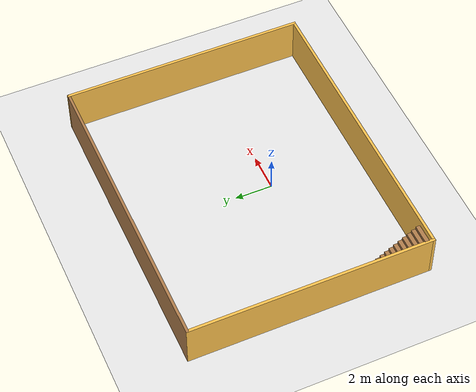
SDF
<sdf version="1.7">
 <world name="default">
  <light name="sun" type="directional">
   <pose>0 0 10 0 -0 0</pose>
   <diffuse>0.8 0.8 0.8 1</diffuse>
   <specular>0.2 0.2 0.2 1</specular>
   <attenuation>
    <range>1000</range>
    <constant>0.9</constant>
    <linear>0.01</linear>
    <quadratic>0.001</quadratic>
   </attenuation>
   <direction>-0.5 0.1 -0.9</direction>
   <spot><inner_angle>0</inner_angle><outer_angle>0</outer_angle><falloff>0</falloff></spot>
  </light>
  <model name="ground_plane">
   <static>1</static>
   <link name="link">
    <collision name="collision">
     <geometry><plane><normal>0 0 1</normal><size>100 100</size></plane></geometry>
     <surface><friction><ode><mu>100</mu><mu2>50</mu2></ode></friction></surface>
    </collision>
    <visual name="visual">
     <cast_shadows>0</cast_shadows>
     <geometry><plane><normal>0 0 1</normal><size>100 100</size></plane></geometry>
     <material>
      <script><uri>file://media/materials/scripts/gazebo.material</uri><name>Gazebo/White</name></script>
     </material>
    </visual>
   </link>
  </model>
  <gravity>0 0 -9.8</gravity>
  <magnetic_field>6e-06 2.3e-05 -4.2e-05</magnetic_field>
  <atmosphere type="adiabatic"/>
  <physics type="ode">
   <max_step_size>0.001</max_step_size>
   <real_time_factor>1</real_time_factor>
   <real_time_update_rate>1000</real_time_update_rate>
  </physics>
  <scene><ambient>0.4 0.4 0.4 1</ambient><background>0.7 0.7 0.7 1</background><shadows>1</shadows></scene>
  <audio><device>default</device></audio>
  <spherical_coordinates>
   <surface_model>EARTH_WGS84</surface_model>
   <latitude_deg>0</latitude_deg>
   <longitude_deg>0</longitude_deg>
   <elevation>0</elevation>
   <heading_deg>0</heading_deg>
  </spherical_coordinates>
  <model name="building">
   <pose>0 1.5 0 0 -0 0</pose>
   <link name="Stairs_0">
    <visual name="Stairs_0_Visual_0">
     <pose>-7.46103 -2.89228 0.083333 0 -0 0</pose>
     <geometry><box><size>1 0.233333 0.166667</size></box></geometry>
     <material>
      <script><uri>file://media/materials/scripts/gazebo.material</uri><name>Gazebo/Wood</name></script>
      <ambient>1 1 1 1</ambient>
     </material>
     <meta><layer>0</layer></meta>
    </visual>
    <collision name="Stairs_0_Collision_0">
     <geometry><box><size>1 0.233333 0.166667</size></box></geometry>
     <pose>-7.46103 -2.89228 0.083333 0 -0 0</pose>
    </collision>
    <visual name="Stairs_0_Visual_1">
     <pose>-7.46103 -3.12562 0.25 0 -0 0</pose>
     <geometry><box><size>1 0.233333 0.166667</size></box></geometry>
     <material>
      <script><uri>file://media/materials/scripts/gazebo.material</uri><name>Gazebo/Wood</name></script>
      <ambient>1 1 1 1</ambient>
     </material>
     <meta><layer>0</layer></meta>
    </visual>
    <collision name="Stairs_0_Collision_1">
     <geometry><box><size>1 0.233333 0.166667</size></box></geometry>
     <pose>-7.46103 -3.12562 0.25 0 -0 0</pose>
    </collision>
    <visual name="Stairs_0_Visual_2">
     <pose>-7.46103 -3.35895 0.416667 0 -0 0</pose>
     <geometry><box><size>1 0.233333 0.166667</size></box></geometry>
     <material>
      <script><uri>file://media/materials/scripts/gazebo.material</uri><name>Gazebo/Wood</name></script>
      <ambient>1 1 1 1</ambient>
     </material>
     <meta><layer>0</layer></meta>
    </visual>
    <collision name="Stairs_0_Collision_2">
     <geometry><box><size>1 0.233333 0.166667</size></box></geometry>
     <pose>-7.46103 -3.35895 0.416667 0 -0 0</pose>
    </collision>
    <visual name="Stairs_0_Visual_3">
     <pose>-7.46103 -3.59228 0.583333 0 -0 0</pose>
     <geometry><box><size>1 0.233333 0.166667</size></box></geometry>
     <material>
      <script><uri>file://media/materials/scripts/gazebo.material</uri><name>Gazebo/Wood</name></script>
      <ambient>1 1 1 1</ambient>
     </material>
     <meta><layer>0</layer></meta>
    </visual>
    <collision name="Stairs_0_Collision_3">
     <geometry><box><size>1 0.233333 0.166667</size></box></geometry>
     <pose>-7.46103 -3.59228 0.583333 0 -0 0</pose>
    </collision>
    <visual name="Stairs_0_Visual_4">
     <pose>-7.46103 -3.82562 0.75 0 -0 0</pose>
     <geometry><box><size>1 0.233333 0.166667</size></box></geometry>
     <material>
      <script><uri>file://media/materials/scripts/gazebo.material</uri><name>Gazebo/Wood</name></script>
      <ambient>1 1 1 1</ambient>
     </material>
     <meta><layer>0</layer></meta>
    </visual>
    <collision name="Stairs_0_Collision_4">
     <geometry><box><size>1 0.233333 0.166667</size></box></geometry>
     <pose>-7.46103 -3.82562 0.75 0 -0 0</pose>
    </collision>
    <visual name="Stairs_0_Visual_5">
     <pose>-7.46103 -4.05895 0.916667 0 -0 0</pose>
     <geometry><box><size>1 0.233333 0.166667</size></box></geometry>
     <material>
      <script><uri>file://media/materials/scripts/gazebo.material</uri><name>Gazebo/Wood</name></script>
      <ambient>1 1 1 1</ambient>
     </material>
     <meta><layer>0</layer></meta>
    </visual>
    <collision name="Stairs_0_Collision_5">
     <geometry><box><size>1 0.233333 0.166667</size></box></geometry>
     <pose>-7.46103 -4.05895 0.916667 0 -0 0</pose>
    </collision>
    <visual name="Stairs_0_Visual_6">
     <pose>-7.46103 -4.29228 1.08333 0 -0 0</pose>
     <geometry><box><size>1 0.233333 0.166667</size></box></geometry>
     <material>
      <script><uri>file://media/materials/scripts/gazebo.material</uri><name>Gazebo/Wood</name></script>
      <ambient>1 1 1 1</ambient>
     </material>
     <meta><layer>0</layer></meta>
    </visual>
    <collision name="Stairs_0_Collision_6">
     <geometry><box><size>1 0.233333 0.166667</size></box></geometry>
     <pose>-7.46103 -4.29228 1.08333 0 -0 0</pose>
    </collision>
    <visual name="Stairs_0_Visual_7">
     <pose>-7.46103 -4.52562 1.25 0 -0 0</pose>
     <geometry><box><size>1 0.233333 0.166667</size></box></geometry>
     <material>
      <script><uri>file://media/materials/scripts/gazebo.material</uri><name>Gazebo/Wood</name></script>
      <ambient>1 1 1 1</ambient>
     </material>
     <meta><layer>0</layer></meta>
    </visual>
    <collision name="Stairs_0_Collision_7">
     <geometry><box><size>1 0.233333 0.166667</size></box></geometry>
     <pose>-7.46103 -4.52562 1.25 0 -0 0</pose>
    </collision>
    <visual name="Stairs_0_Visual_8">
     <pose>-7.46103 -4.75895 1.41667 0 -0 0</pose>
     <geometry><box><size>1 0.233333 0.166667</size></box></geometry>
     <material>
      <script><uri>file://media/materials/scripts/gazebo.material</uri><name>Gazebo/Wood</name></script>
      <ambient>1 1 1 1</ambient>
     </material>
     <meta><layer>0</layer></meta>
    </visual>
    <collision name="Stairs_0_Collision_8">
     <geometry><box><size>1 0.233333 0.166667</size></box></geometry>
     <pose>-7.46103 -4.75895 1.41667 0 -0 0</pose>
    </collision>
    <visual name="Stairs_0_Visual_9">
     <pose>-7.46103 -4.99228 1.58333 0 -0 0</pose>
     <geometry><box><size>1 0.233333 0.166667</size></box></geometry>
     <material>
      <script><uri>file://media/materials/scripts/gazebo.material</uri><name>Gazebo/Wood</name></script>
      <ambient>1 1 1 1</ambient>
     </material>
     <meta><layer>0</layer></meta>
    </visual>
    <collision name="Stairs_0_Collision_9">
     <geometry><box><size>1 0.233333 0.166667</size></box></geometry>
     <pose>-7.46103 -4.99228 1.58333 0 -0 0</pose>
    </collision>
    <visual name="Stairs_0_Visual_10">
     <pose>-7.46103 -5.22562 1.75 0 -0 0</pose>
     <geometry><box><size>1 0.233333 0.166667</size></box></geometry>
     <material>
      <script><uri>file://media/materials/scripts/gazebo.material</uri><name>Gazebo/Wood</name></script>
      <ambient>1 1 1 1</ambient>
     </material>
     <meta><layer>0</layer></meta>
    </visual>
    <collision name="Stairs_0_Collision_10">
     <geometry><box><size>1 0.233333 0.166667</size></box></geometry>
     <pose>-7.46103 -5.22562 1.75 0 -0 0</pose>
    </collision>
    <visual name="Stairs_0_Visual_11">
     <pose>-7.46103 -5.45895 1.91667 0 -0 0</pose>
     <geometry><box><size>1 0.233333 0.166667</size></box></geometry>
     <material>
      <script><uri>file://media/materials/scripts/gazebo.material</uri><name>Gazebo/Wood</name></script>
      <ambient>1 1 1 1</ambient>
     </material>
     <meta><layer>0</layer></meta>
    </visual>
    <collision name="Stairs_0_Collision_11">
     <geometry><box><size>1 0.233333 0.166667</size></box></geometry>
     <pose>-7.46103 -5.45895 1.91667 0 -0 0</pose>
    </collision>
    <visual name="Stairs_0_Visual_12">
     <pose>-7.46103 -5.69229 2.08333 0 -0 0</pose>
     <geometry><box><size>1 0.233333 0.166667</size></box></geometry>
     <material>
      <script><uri>file://media/materials/scripts/gazebo.material</uri><name>Gazebo/Wood</name></script>
      <ambient>1 1 1 1</ambient>
     </material>
     <meta><layer>0</layer></meta>
    </visual>
    <collision name="Stairs_0_Collision_12">
     <geometry><box><size>1 0.233333 0.166667</size></box></geometry>
     <pose>-7.46103 -5.69229 2.08333 0 -0 0</pose>
    </collision>
    <visual name="Stairs_0_Visual_13">
     <pose>-7.46103 -5.92562 2.25 0 -0 0</pose>
     <geometry><box><size>1 0.233333 0.166667</size></box></geometry>
     <material>
      <script><uri>file://media/materials/scripts/gazebo.material</uri><name>Gazebo/Wood</name></script>
      <ambient>1 1 1 1</ambient>
     </material>
     <meta><layer>0</layer></meta>
    </visual>
    <collision name="Stairs_0_Collision_13">
     <geometry><box><size>1 0.233333 0.166667</size></box></geometry>
     <pose>-7.46103 -5.92562 2.25 0 -0 0</pose>
    </collision>
    <visual name="Stairs_0_Visual_14">
     <pose>-7.46103 -6.15895 2.41667 0 -0 0</pose>
     <geometry><box><size>1 0.233333 0.166667</size></box></geometry>
     <material>
      <script><uri>file://media/materials/scripts/gazebo.material</uri><name>Gazebo/Wood</name></script>
      <ambient>1 1 1 1</ambient>
     </material>
     <meta><layer>0</layer></meta>
    </visual>
    <collision name="Stairs_0_Collision_14">
     <geometry><box><size>1 0.233333 0.166667</size></box></geometry>
     <pose>-7.46103 -6.15895 2.41667 0 -0 0</pose>
    </collision>
   </link>
   <link name="Wall_12">
    <collision name="Wall_12_Collision">
     <geometry><box><size>16.15 0.15 2.5</size></box></geometry>
     <pose>0 0 1.25 0 -0 0</pose>
    </collision>
    <visual name="Wall_12_Visual">
     <pose>0 0 1.25 0 -0 0</pose>
     <geometry><box><size>16.15 0.15 2.5</size></box></geometry>
     <material>
      <script><uri>file://media/materials/scripts/gazebo.material</uri><name>Gazebo/Grey</name></script>
      <ambient>1 0.764706 0.305882 1</ambient>
     </material>
     <meta><layer>0</layer></meta>
    </visual>
    <pose>0 -6.5 0 0 -0 3.14159</pose>
   </link>
   <link name="Wall_18">
    <collision name="Wall_18_Collision">
     <geometry><box><size>16.15 0.15 2.5</size></box></geometry>
     <pose>0 0 1.25 0 -0 0</pose>
    </collision>
    <visual name="Wall_18_Visual">
     <pose>0 0 1.25 0 -0 0</pose>
     <geometry><box><size>16.15 0.15 2.5</size></box></geometry>
     <material>
      <script><uri>file://media/materials/scripts/gazebo.material</uri><name>Gazebo/Wood</name></script>
      <ambient>1 0.764706 0.305882 1</ambient>
     </material>
     <meta><layer>0</layer></meta>
    </visual>
    <pose>0 6.5 0 0 -0 3.14159</pose>
   </link>
   <link name="Wall_20">
    <collision name="Wall_20_Collision">
     <geometry><box><size>13.15 0.15 2.5</size></box></geometry>
     <pose>0 0 1.25 0 -0 0</pose>
    </collision>
    <visual name="Wall_20_Visual">
     <pose>0 0 1.25 0 -0 0</pose>
     <geometry><box><size>13.15 0.15 2.5</size></box></geometry>
     <material>
      <script><uri>file://media/materials/scripts/gazebo.material</uri><name>Gazebo/Grey</name></script>
      <ambient>1 0.764706 0.305882 1</ambient>
     </material>
     <meta><layer>0</layer></meta>
    </visual>
    <pose>-8 0 0 0 -0 1.5708</pose>
   </link>
   <link name="Wall_7">
    <collision name="Wall_7_Collision">
     <geometry><box><size>13.15 0.15 2.5</size></box></geometry>
     <pose>0 0 1.25 0 -0 0</pose>
    </collision>
    <visual name="Wall_7_Visual">
     <pose>0 0 1.25 0 -0 0</pose>
     <geometry><box><size>13.15 0.15 2.5</size></box></geometry>
     <material>
      <script><uri>file://media/materials/scripts/gazebo.material</uri><name>Gazebo/Grey</name></script>
      <ambient>1 0.764706 0.305882 1</ambient>
     </material>
     <meta><layer>0</layer></meta>
    </visual>
    <pose>8 0 0 0 -0 -1.5708</pose>
   </link>
   <static>1</static>
  </model>
 </world>
</sdf>
